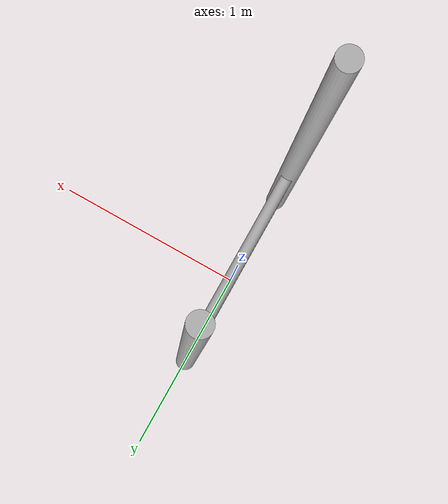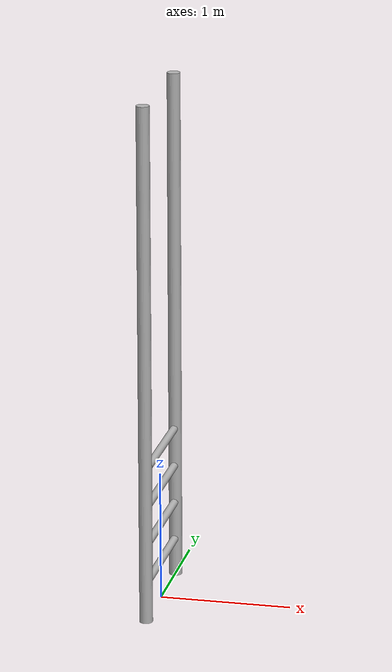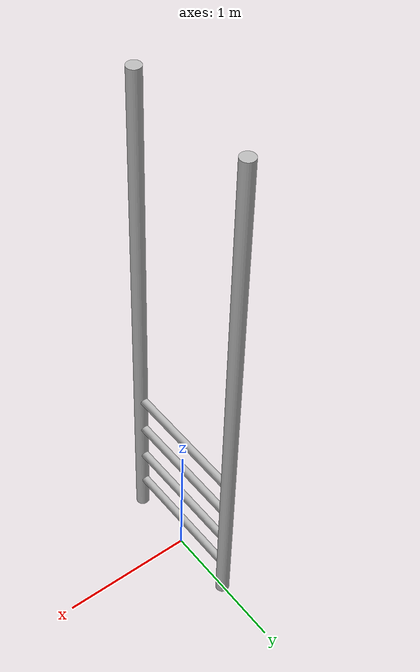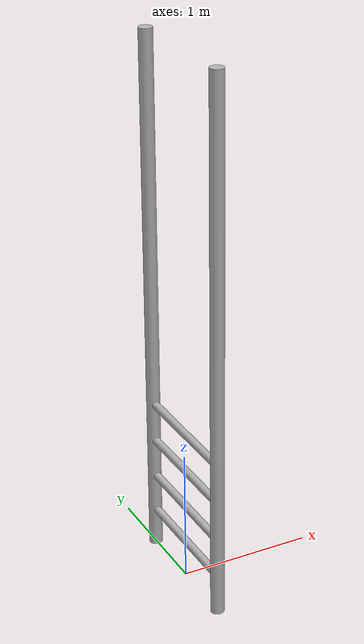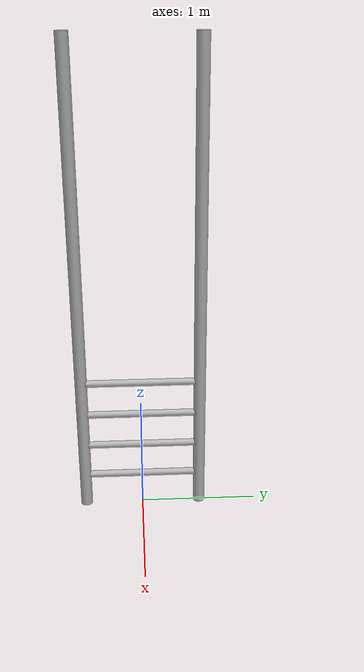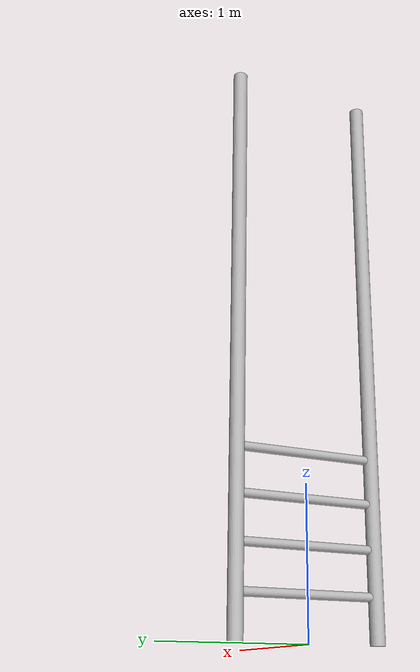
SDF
<?xml version="1.0"?>
<sdf version="1.3">
  <model name="ladder">
    <pose>0 0 0 0 0 0</pose>
    <static>true</static>
    <link name="link">

      <collision name="right_upright_collision">
        <pose>0 0.5 2.0 0 0 0 </pose>
        <geometry>
          <cylinder>
            <radius>0.05</radius>
            <length>4.0</length>
          </cylinder>
        </geometry>
      </collision>

      <visual name="right_upright_visual">
        <pose>0 0.5 2.0 0 0 0 </pose>
        <geometry>
          <cylinder>
            <radius>0.05</radius>
            <length>4.0</length>
          </cylinder>
        </geometry>
      </visual>

      <collision name="left_upright_collision">
        <pose>0 -0.5 2.0 0 0 0 </pose>
        <geometry>
          <cylinder>
            <radius>0.05</radius>
            <length>4.0</length>
          </cylinder>
        </geometry>
      </collision>

      <visual name="left_upright_visual">
        <pose>0 -0.5 2.0 0 0 0 </pose>
        <geometry>
          <cylinder>
            <radius>0.05</radius>
            <length>4.0</length>
          </cylinder>
        </geometry>
      </visual>

      <collision name="rung_1_collision">
        <pose>0 0 0.3 1.5707 0 0 </pose>
        <geometry>
          <cylinder>
            <radius>0.03</radius>
            <length>1.0</length>
          </cylinder>
        </geometry>
      </collision>

      <visual name="rung_1_visual">
        <pose>0 0 0.3 1.5707 0 0 </pose>
        <geometry>
          <cylinder>
            <radius>0.03</radius>
            <length>1.0</length>
          </cylinder>
        </geometry>
      </visual>

      <collision name="rung_2_collision">
        <pose>0 0 0.6 1.5707 0 0 </pose>
        <geometry>
          <cylinder>
            <radius>0.03</radius>
            <length>1.0</length>
          </cylinder>
        </geometry>
      </collision>

      <visual name="rung_2_visual">
        <pose>0 0 0.6 1.5707 0 0 </pose>
        <geometry>
          <cylinder>
            <radius>0.03</radius>
            <length>1.0</length>
          </cylinder>
        </geometry>
      </visual>

      <collision name="rung_3_collision">
        <pose>0 0 0.9 1.5707 0 0 </pose>
        <geometry>
          <cylinder>
            <radius>0.03</radius>
            <length>1.0</length>
          </cylinder>
        </geometry>
      </collision>

      <visual name="rung_3_visual">
        <pose>0 0 0.9 1.5707 0 0 </pose>
        <geometry>
          <cylinder>
            <radius>0.03</radius>
            <length>1.0</length>
          </cylinder>
        </geometry>
      </visual>

      <collision name="rung_4_collision">
        <pose>0 0 1.2 1.5707 0 0 </pose>
        <geometry>
          <cylinder>
            <radius>0.03</radius>
            <length>1.0</length>
          </cylinder>
        </geometry>
      </collision>

      <visual name="rung_4_visual">
        <pose>0 0 1.2 1.5707 0 0 </pose>
        <geometry>
          <cylinder>
            <radius>0.03</radius>
            <length>1.0</length>
          </cylinder>
        </geometry>
      </visual>

    </link>
  </model>
</sdf>
